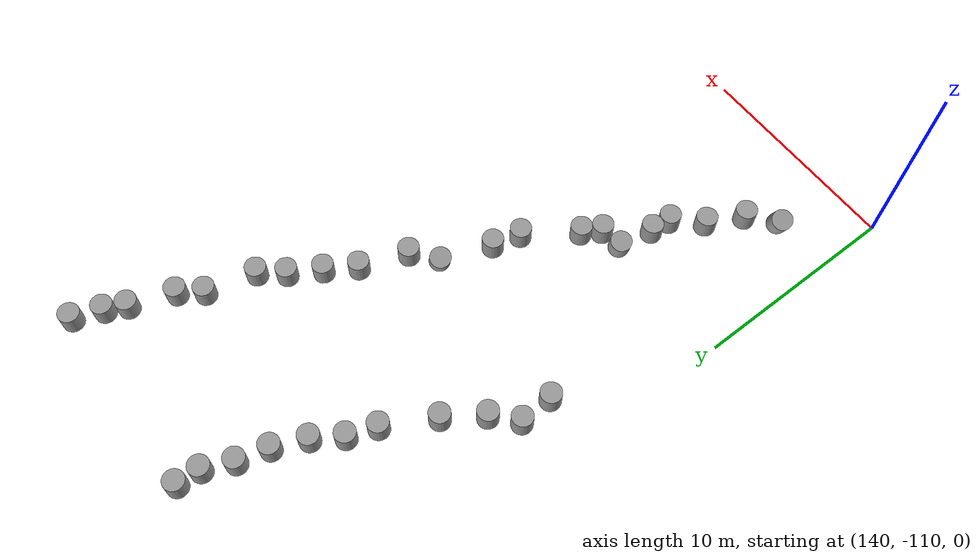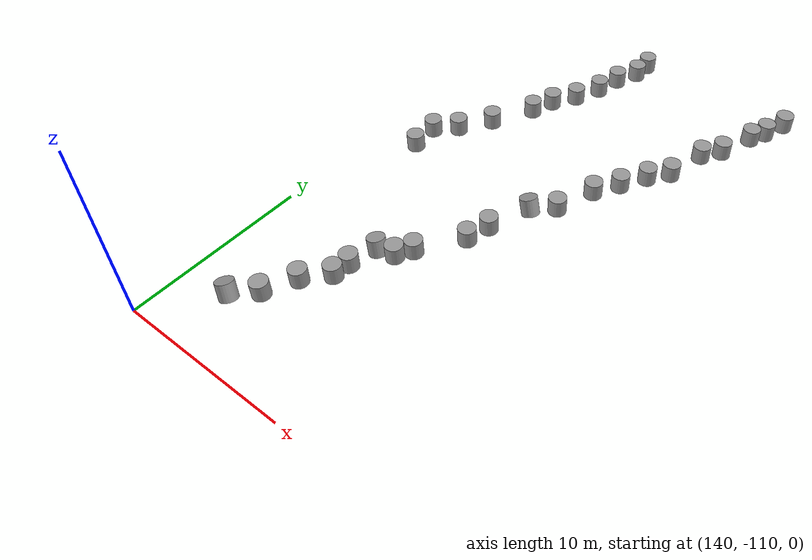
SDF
<sdf version="1.7">
 <world name="default">
  <model name="unit_cylinder_85_clone_244_clone_749">
   <pose>158.512 -78.1438 0.451074 0.000161 0.000404 0.000439</pose>
   <link name="link">
    <inertial>
     <mass>1</mass>
     <inertia><ixx>0.145833</ixx><ixy>0</ixy><ixz>0</ixz><iyy>0.145833</iyy><iyz>0</iyz><izz>0.125</izz></inertia>
    </inertial>
    <collision name="collision">
     <geometry><cylinder><radius>0.5</radius><length>1</length></cylinder></geometry>
    </collision>
    <visual name="visual">
     <geometry><cylinder><radius>0.5</radius><length>1</length></cylinder></geometry>
     <material>
      <script><name>Gazebo/Grey</name><uri>file://media/materials/scripts/gazebo.material</uri></script>
     </material>
    </visual>
   </link>
  </model>
  <model name="unit_cylinder_85_clone_244_clone_750">
   <pose>158 -79.4958 0.451063 0.000162 0.000402 0.000605</pose>
   <link name="link">
    <inertial>
     <mass>1</mass>
     <inertia><ixx>0.145833</ixx><ixy>0</ixy><ixz>0</ixz><iyy>0.145833</iyy><iyz>0</iyz><izz>0.125</izz></inertia>
    </inertial>
    <collision name="collision">
     <geometry><cylinder><radius>0.5</radius><length>1</length></cylinder></geometry>
    </collision>
    <visual name="visual">
     <geometry><cylinder><radius>0.5</radius><length>1</length></cylinder></geometry>
     <material>
      <script><name>Gazebo/Grey</name><uri>file://media/materials/scripts/gazebo.material</uri></script>
     </material>
    </visual>
   </link>
  </model>
  <model name="unit_cylinder_85_clone_244_clone_751">
   <pose>157.526 -80.4483 0.451094 0.000162 0.000404 0.000444</pose>
   <link name="link">
    <inertial>
     <mass>1</mass>
     <inertia><ixx>0.145833</ixx><ixy>0</ixy><ixz>0</ixz><iyy>0.145833</iyy><iyz>0</iyz><izz>0.125</izz></inertia>
    </inertial>
    <collision name="collision">
     <geometry><cylinder><radius>0.5</radius><length>1</length></cylinder></geometry>
    </collision>
    <visual name="visual">
     <geometry><cylinder><radius>0.5</radius><length>1</length></cylinder></geometry>
     <material>
      <script><name>Gazebo/Grey</name><uri>file://media/materials/scripts/gazebo.material</uri></script>
     </material>
    </visual>
   </link>
  </model>
  <model name="unit_cylinder_85_clone_244_clone_755">
   <pose>149.076 -77.8551 0.449993 1e-06 1e-06 0.000507</pose>
   <link name="link">
    <inertial>
     <mass>1</mass>
     <inertia><ixx>0.145833</ixx><ixy>0</ixy><ixz>0</ixz><iyy>0.145833</iyy><iyz>0</iyz><izz>0.125</izz></inertia>
    </inertial>
    <collision name="collision">
     <geometry><cylinder><radius>0.5</radius><length>1</length></cylinder></geometry>
    </collision>
    <visual name="visual">
     <geometry><cylinder><radius>0.5</radius><length>1</length></cylinder></geometry>
     <material>
      <script><name>Gazebo/Grey</name><uri>file://media/materials/scripts/gazebo.material</uri></script>
     </material>
    </visual>
   </link>
  </model>
  <model name="unit_cylinder_85_clone_244_clone_756">
   <pose>149 -79.0002 0.45005 -3e-05 -9.5e-05 0.001161</pose>
   <link name="link">
    <inertial>
     <mass>1</mass>
     <inertia><ixx>0.145833</ixx><ixy>0</ixy><ixz>0</ixz><iyy>0.145833</iyy><iyz>0</iyz><izz>0.125</izz></inertia>
    </inertial>
    <collision name="collision">
     <geometry><cylinder><radius>0.5</radius><length>1</length></cylinder></geometry>
    </collision>
    <visual name="visual">
     <geometry><cylinder><radius>0.5</radius><length>1</length></cylinder></geometry>
     <material>
      <script><name>Gazebo/Grey</name><uri>file://media/materials/scripts/gazebo.material</uri></script>
     </material>
    </visual>
   </link>
  </model>
  <model name="unit_cylinder_85_clone_244_clone_757">
   <pose>148.391 -80.3464 0.45 0 -0 0.000417</pose>
   <link name="link">
    <inertial>
     <mass>1</mass>
     <inertia><ixx>0.145833</ixx><ixy>0</ixy><ixz>0</ixz><iyy>0.145833</iyy><iyz>0</iyz><izz>0.125</izz></inertia>
    </inertial>
    <collision name="collision">
     <geometry><cylinder><radius>0.5</radius><length>1</length></cylinder></geometry>
    </collision>
    <visual name="visual">
     <geometry><cylinder><radius>0.5</radius><length>1</length></cylinder></geometry>
     <material>
      <script><name>Gazebo/Grey</name><uri>file://media/materials/scripts/gazebo.material</uri></script>
     </material>
    </visual>
   </link>
  </model>
  <model name="unit_cylinder_85_clone_244_clone_758">
   <pose>156.767 -82.5105 0.451067 0.000161 0.000403 0.000509</pose>
   <link name="link">
    <inertial>
     <mass>1</mass>
     <inertia><ixx>0.145833</ixx><ixy>0</ixy><ixz>0</ixz><iyy>0.145833</iyy><iyz>0</iyz><izz>0.125</izz></inertia>
    </inertial>
    <collision name="collision">
     <geometry><cylinder><radius>0.5</radius><length>1</length></cylinder></geometry>
    </collision>
    <visual name="visual">
     <geometry><cylinder><radius>0.5</radius><length>1</length></cylinder></geometry>
     <material>
      <script><name>Gazebo/Grey</name><uri>file://media/materials/scripts/gazebo.material</uri></script>
     </material>
    </visual>
   </link>
  </model>
  <model name="unit_cylinder_85_clone_244_clone_759">
   <pose>156 -83.5515 0.451214 0.000168 0.000403 0.000507</pose>
   <link name="link">
    <inertial>
     <mass>1</mass>
     <inertia><ixx>0.145833</ixx><ixy>0</ixy><ixz>0</ixz><iyy>0.145833</iyy><iyz>0</iyz><izz>0.125</izz></inertia>
    </inertial>
    <collision name="collision">
     <geometry><cylinder><radius>0.5</radius><length>1</length></cylinder></geometry>
    </collision>
    <visual name="visual">
     <geometry><cylinder><radius>0.5</radius><length>1</length></cylinder></geometry>
     <material>
      <script><name>Gazebo/Grey</name><uri>file://media/materials/scripts/gazebo.material</uri></script>
     </material>
    </visual>
   </link>
  </model>
  <model name="unit_cylinder_85_clone_244_clone_760">
   <pose>155.407 -85.9225 0.451021 0.000195 0.000382 0.000502</pose>
   <link name="link">
    <inertial>
     <mass>1</mass>
     <inertia><ixx>0.145833</ixx><ixy>0</ixy><ixz>0</ixz><iyy>0.145833</iyy><iyz>0</iyz><izz>0.125</izz></inertia>
    </inertial>
    <collision name="collision">
     <geometry><cylinder><radius>0.5</radius><length>1</length></cylinder></geometry>
    </collision>
    <visual name="visual">
     <geometry><cylinder><radius>0.5</radius><length>1</length></cylinder></geometry>
     <material>
      <script><name>Gazebo/Grey</name><uri>file://media/materials/scripts/gazebo.material</uri></script>
     </material>
    </visual>
   </link>
  </model>
  <model name="unit_cylinder_85_clone_244_clone_761">
   <pose>154.535 -87.0001 0.451145 0.000198 0.000384 0.000486</pose>
   <link name="link">
    <inertial>
     <mass>1</mass>
     <inertia><ixx>0.145833</ixx><ixy>0</ixy><ixz>0</ixz><iyy>0.145833</iyy><iyz>0</iyz><izz>0.125</izz></inertia>
    </inertial>
    <collision name="collision">
     <geometry><cylinder><radius>0.5</radius><length>1</length></cylinder></geometry>
    </collision>
    <visual name="visual">
     <geometry><cylinder><radius>0.5</radius><length>1</length></cylinder></geometry>
     <material>
      <script><name>Gazebo/Grey</name><uri>file://media/materials/scripts/gazebo.material</uri></script>
     </material>
    </visual>
   </link>
  </model>
  <model name="unit_cylinder_85_clone_244_clone_762">
   <pose>153.677 -88.4137 0.451194 0.000202 0.00039 0.000501</pose>
   <link name="link">
    <inertial>
     <mass>1</mass>
     <inertia><ixx>0.145833</ixx><ixy>0</ixy><ixz>0</ixz><iyy>0.145833</iyy><iyz>0</iyz><izz>0.125</izz></inertia>
    </inertial>
    <collision name="collision">
     <geometry><cylinder><radius>0.5</radius><length>1</length></cylinder></geometry>
    </collision>
    <visual name="visual">
     <geometry><cylinder><radius>0.5</radius><length>1</length></cylinder></geometry>
     <material>
      <script><name>Gazebo/Grey</name><uri>file://media/materials/scripts/gazebo.material</uri></script>
     </material>
    </visual>
   </link>
  </model>
  <model name="unit_cylinder_85_clone_244_clone_763">
   <pose>148.012 -81.8271 0.450623 -0.000441 -0.001166 0.000392</pose>
   <link name="link">
    <inertial>
     <mass>1</mass>
     <inertia><ixx>0.145833</ixx><ixy>0</ixy><ixz>0</ixz><iyy>0.145833</iyy><iyz>0</iyz><izz>0.125</izz></inertia>
    </inertial>
    <collision name="collision">
     <geometry><cylinder><radius>0.5</radius><length>1</length></cylinder></geometry>
    </collision>
    <visual name="visual">
     <geometry><cylinder><radius>0.5</radius><length>1</length></cylinder></geometry>
     <material>
      <script><name>Gazebo/Grey</name><uri>file://media/materials/scripts/gazebo.material</uri></script>
     </material>
    </visual>
   </link>
  </model>
  <model name="unit_cylinder_85_clone_244_clone_764">
   <pose>147.345 -83.3594 0.450689 -0.000624 -0.00123 0.000655</pose>
   <link name="link">
    <inertial>
     <mass>1</mass>
     <inertia><ixx>0.145833</ixx><ixy>0</ixy><ixz>0</ixz><iyy>0.145833</iyy><iyz>0</iyz><izz>0.125</izz></inertia>
    </inertial>
    <collision name="collision">
     <geometry><cylinder><radius>0.5</radius><length>1</length></cylinder></geometry>
    </collision>
    <visual name="visual">
     <geometry><cylinder><radius>0.5</radius><length>1</length></cylinder></geometry>
     <material>
      <script><name>Gazebo/Grey</name><uri>file://media/materials/scripts/gazebo.material</uri></script>
     </material>
    </visual>
   </link>
  </model>
  <model name="unit_cylinder_85_clone_244_clone_765">
   <pose>146.482 -84.6404 0.449997 5e-06 -0 0.00049</pose>
   <link name="link">
    <inertial>
     <mass>1</mass>
     <inertia><ixx>0.145833</ixx><ixy>0</ixy><ixz>0</ixz><iyy>0.145833</iyy><iyz>0</iyz><izz>0.125</izz></inertia>
    </inertial>
    <collision name="collision">
     <geometry><cylinder><radius>0.5</radius><length>1</length></cylinder></geometry>
    </collision>
    <visual name="visual">
     <geometry><cylinder><radius>0.5</radius><length>1</length></cylinder></geometry>
     <material>
      <script><name>Gazebo/Grey</name><uri>file://media/materials/scripts/gazebo.material</uri></script>
     </material>
    </visual>
   </link>
  </model>
  <model name="unit_cylinder_85_clone_244_clone_766">
   <pose>145.999 -85.9996 0.45069 -0.000628 -0.001229 0.00066</pose>
   <link name="link">
    <inertial>
     <mass>1</mass>
     <inertia><ixx>0.145833</ixx><ixy>0</ixy><ixz>0</ixz><iyy>0.145833</iyy><iyz>0</iyz><izz>0.125</izz></inertia>
    </inertial>
    <collision name="collision">
     <geometry><cylinder><radius>0.5</radius><length>1</length></cylinder></geometry>
    </collision>
    <visual name="visual">
     <geometry><cylinder><radius>0.5</radius><length>1</length></cylinder></geometry>
     <material>
      <script><name>Gazebo/Grey</name><uri>file://media/materials/scripts/gazebo.material</uri></script>
     </material>
    </visual>
   </link>
  </model>
  <model name="unit_cylinder_85_clone_244_clone_767">
   <pose>152.819 -89.7819 0.451246 0.000179 0.000355 0.0005</pose>
   <link name="link">
    <inertial>
     <mass>1</mass>
     <inertia><ixx>0.145833</ixx><ixy>0</ixy><ixz>0</ixz><iyy>0.145833</iyy><iyz>0</iyz><izz>0.125</izz></inertia>
    </inertial>
    <collision name="collision">
     <geometry><cylinder><radius>0.5</radius><length>1</length></cylinder></geometry>
    </collision>
    <visual name="visual">
     <geometry><cylinder><radius>0.5</radius><length>1</length></cylinder></geometry>
     <material>
      <script><name>Gazebo/Grey</name><uri>file://media/materials/scripts/gazebo.material</uri></script>
     </material>
    </visual>
   </link>
  </model>
  <model name="unit_cylinder_85_clone_244_clone_768">
   <pose>152 -92.0001 0.45113 0.000197 0.00038 0.000423</pose>
   <link name="link">
    <inertial>
     <mass>1</mass>
     <inertia><ixx>0.145833</ixx><ixy>0</ixy><ixz>0</ixz><iyy>0.145833</iyy><iyz>0</iyz><izz>0.125</izz></inertia>
    </inertial>
    <collision name="collision">
     <geometry><cylinder><radius>0.5</radius><length>1</length></cylinder></geometry>
    </collision>
    <visual name="visual">
     <geometry><cylinder><radius>0.5</radius><length>1</length></cylinder></geometry>
     <material>
      <script><name>Gazebo/Grey</name><uri>file://media/materials/scripts/gazebo.material</uri></script>
     </material>
    </visual>
   </link>
  </model>
  <model name="unit_cylinder_85_clone_244_clone_769">
   <pose>150.853 -92.9244 0.386935 -0.157687 -0.298078 0.021598</pose>
   <link name="link">
    <inertial>
     <mass>1</mass>
     <inertia><ixx>0.145833</ixx><ixy>0</ixy><ixz>0</ixz><iyy>0.145833</iyy><iyz>0</iyz><izz>0.125</izz></inertia>
    </inertial>
    <collision name="collision">
     <geometry><cylinder><radius>0.5</radius><length>1</length></cylinder></geometry>
    </collision>
    <visual name="visual">
     <geometry><cylinder><radius>0.5</radius><length>1</length></cylinder></geometry>
     <material>
      <script><name>Gazebo/Grey</name><uri>file://media/materials/scripts/gazebo.material</uri></script>
     </material>
    </visual>
   </link>
  </model>
  <model name="unit_cylinder_85_clone_244_clone_770">
   <pose>149.993 -95.3151 0.451209 0.000226 0.000375 0.000498</pose>
   <link name="link">
    <inertial>
     <mass>1</mass>
     <inertia><ixx>0.145833</ixx><ixy>0</ixy><ixz>0</ixz><iyy>0.145833</iyy><iyz>0</iyz><izz>0.125</izz></inertia>
    </inertial>
    <collision name="collision">
     <geometry><cylinder><radius>0.5</radius><length>1</length></cylinder></geometry>
    </collision>
    <visual name="visual">
     <geometry><cylinder><radius>0.5</radius><length>1</length></cylinder></geometry>
     <material>
      <script><name>Gazebo/Grey</name><uri>file://media/materials/scripts/gazebo.material</uri></script>
     </material>
    </visual>
   </link>
  </model>
  <model name="unit_cylinder_85_clone_244_clone_771">
   <pose>149.643 -96.6688 0.451039 0.00022 0.000375 0.000501</pose>
   <link name="link">
    <inertial>
     <mass>1</mass>
     <inertia><ixx>0.145833</ixx><ixy>0</ixy><ixz>0</ixz><iyy>0.145833</iyy><iyz>0</iyz><izz>0.125</izz></inertia>
    </inertial>
    <collision name="collision">
     <geometry><cylinder><radius>0.5</radius><length>1</length></cylinder></geometry>
    </collision>
    <visual name="visual">
     <geometry><cylinder><radius>0.5</radius><length>1</length></cylinder></geometry>
     <material>
      <script><name>Gazebo/Grey</name><uri>file://media/materials/scripts/gazebo.material</uri></script>
     </material>
    </visual>
   </link>
  </model>
  <model name="unit_cylinder_85_clone_244_clone_772">
   <pose>148.031 -98.955 0.451132 0.000223 0.000367 0.003595</pose>
   <link name="link">
    <inertial>
     <mass>1</mass>
     <inertia><ixx>0.145833</ixx><ixy>0</ixy><ixz>0</ixz><iyy>0.145833</iyy><iyz>0</iyz><izz>0.125</izz></inertia>
    </inertial>
    <collision name="collision">
     <geometry><cylinder><radius>0.5</radius><length>1</length></cylinder></geometry>
    </collision>
    <visual name="visual">
     <geometry><cylinder><radius>0.5</radius><length>1</length></cylinder></geometry>
     <material>
      <script><name>Gazebo/Grey</name><uri>file://media/materials/scripts/gazebo.material</uri></script>
     </material>
    </visual>
   </link>
  </model>
  <model name="unit_cylinder_85_clone_244_clone_773">
   <pose>147.492 -99.7995 0.451137 0.000207 0.000375 -0.027393</pose>
   <link name="link">
    <inertial>
     <mass>1</mass>
     <inertia><ixx>0.145833</ixx><ixy>0</ixy><ixz>0</ixz><iyy>0.145833</iyy><iyz>0</iyz><izz>0.125</izz></inertia>
    </inertial>
    <collision name="collision">
     <geometry><cylinder><radius>0.5</radius><length>1</length></cylinder></geometry>
    </collision>
    <visual name="visual">
     <geometry><cylinder><radius>0.5</radius><length>1</length></cylinder></geometry>
     <material>
      <script><name>Gazebo/Grey</name><uri>file://media/materials/scripts/gazebo.material</uri></script>
     </material>
    </visual>
   </link>
  </model>
  <model name="unit_cylinder_85_clone_244_clone_774">
   <pose>144.731 -88.3083 0.450601 -0.000631 -0.00103 0.000929</pose>
   <link name="link">
    <inertial>
     <mass>1</mass>
     <inertia><ixx>0.145833</ixx><ixy>0</ixy><ixz>0</ixz><iyy>0.145833</iyy><iyz>0</iyz><izz>0.125</izz></inertia>
    </inertial>
    <collision name="collision">
     <geometry><cylinder><radius>0.5</radius><length>1</length></cylinder></geometry>
    </collision>
    <visual name="visual">
     <geometry><cylinder><radius>0.5</radius><length>1</length></cylinder></geometry>
     <material>
      <script><name>Gazebo/Grey</name><uri>file://media/materials/scripts/gazebo.material</uri></script>
     </material>
    </visual>
   </link>
  </model>
  <model name="unit_cylinder_85_clone_244_clone_775">
   <pose>143.555 -90 0.44999 0 -0 0.000523</pose>
   <link name="link">
    <inertial>
     <mass>1</mass>
     <inertia><ixx>0.145833</ixx><ixy>0</ixy><ixz>0</ixz><iyy>0.145833</iyy><iyz>0</iyz><izz>0.125</izz></inertia>
    </inertial>
    <collision name="collision">
     <geometry><cylinder><radius>0.5</radius><length>1</length></cylinder></geometry>
    </collision>
    <visual name="visual">
     <geometry><cylinder><radius>0.5</radius><length>1</length></cylinder></geometry>
     <material>
      <script><name>Gazebo/Grey</name><uri>file://media/materials/scripts/gazebo.material</uri></script>
     </material>
    </visual>
   </link>
  </model>
  <model name="unit_cylinder_85_clone_244_clone_776">
   <pose>142.457 -91 0.450001 2e-06 -2e-06 0.000496</pose>
   <link name="link">
    <inertial>
     <mass>1</mass>
     <inertia><ixx>0.145833</ixx><ixy>0</ixy><ixz>0</ixz><iyy>0.145833</iyy><iyz>0</iyz><izz>0.125</izz></inertia>
    </inertial>
    <collision name="collision">
     <geometry><cylinder><radius>0.5</radius><length>1</length></cylinder></geometry>
    </collision>
    <visual name="visual">
     <geometry><cylinder><radius>0.5</radius><length>1</length></cylinder></geometry>
     <material>
      <script><name>Gazebo/Grey</name><uri>file://media/materials/scripts/gazebo.material</uri></script>
     </material>
    </visual>
   </link>
  </model>
  <model name="unit_cylinder_85_clone_244_clone_777">
   <pose>142.54 -92.6333 0.45082 -0.000892 -0.001379 0.000597</pose>
   <link name="link">
    <inertial>
     <mass>1</mass>
     <inertia><ixx>0.145833</ixx><ixy>0</ixy><ixz>0</ixz><iyy>0.145833</iyy><iyz>0</iyz><izz>0.125</izz></inertia>
    </inertial>
    <collision name="collision">
     <geometry><cylinder><radius>0.5</radius><length>1</length></cylinder></geometry>
    </collision>
    <visual name="visual">
     <geometry><cylinder><radius>0.5</radius><length>1</length></cylinder></geometry>
     <material>
      <script><name>Gazebo/Grey</name><uri>file://media/materials/scripts/gazebo.material</uri></script>
     </material>
    </visual>
   </link>
  </model>
  <model name="unit_cylinder_85_clone_244_clone_785">
   <pose>146.429 -99.9643 0.346572 -0.122701 -0.181497 0.059296</pose>
   <link name="link">
    <inertial>
     <mass>1</mass>
     <inertia><ixx>0.145833</ixx><ixy>0</ixy><ixz>0</ixz><iyy>0.145833</iyy><iyz>0</iyz><izz>0.125</izz></inertia>
    </inertial>
    <collision name="collision">
     <geometry><cylinder><radius>0.5</radius><length>1</length></cylinder></geometry>
    </collision>
    <visual name="visual">
     <geometry><cylinder><radius>0.5</radius><length>1</length></cylinder></geometry>
     <material>
      <script><name>Gazebo/Grey</name><uri>file://media/materials/scripts/gazebo.material</uri></script>
     </material>
    </visual>
   </link>
  </model>
  <model name="unit_cylinder_85_clone_244_clone_786">
   <pose>146.104 -101.614 0.451251 0.000219 0.000362 0.013743</pose>
   <link name="link">
    <inertial>
     <mass>1</mass>
     <inertia><ixx>0.145833</ixx><ixy>0</ixy><ixz>0</ixz><iyy>0.145833</iyy><iyz>0</iyz><izz>0.125</izz></inertia>
    </inertial>
    <collision name="collision">
     <geometry><cylinder><radius>0.5</radius><length>1</length></cylinder></geometry>
    </collision>
    <visual name="visual">
     <geometry><cylinder><radius>0.5</radius><length>1</length></cylinder></geometry>
     <material>
      <script><name>Gazebo/Grey</name><uri>file://media/materials/scripts/gazebo.material</uri></script>
     </material>
    </visual>
   </link>
  </model>
  <model name="unit_cylinder_85_clone_244_clone_787">
   <pose>145.995 -102.609 0.451068 0.000219 0.000366 0.002835</pose>
   <link name="link">
    <inertial>
     <mass>1</mass>
     <inertia><ixx>0.145833</ixx><ixy>0</ixy><ixz>0</ixz><iyy>0.145833</iyy><iyz>0</iyz><izz>0.125</izz></inertia>
    </inertial>
    <collision name="collision">
     <geometry><cylinder><radius>0.5</radius><length>1</length></cylinder></geometry>
    </collision>
    <visual name="visual">
     <geometry><cylinder><radius>0.5</radius><length>1</length></cylinder></geometry>
     <material>
      <script><name>Gazebo/Grey</name><uri>file://media/materials/scripts/gazebo.material</uri></script>
     </material>
    </visual>
   </link>
  </model>
  <model name="unit_cylinder_85_clone_244_clone_788">
   <pose>144.864 -103.846 0.451214 0.00022 0.000371 0.000501</pose>
   <link name="link">
    <inertial>
     <mass>1</mass>
     <inertia><ixx>0.145833</ixx><ixy>0</ixy><ixz>0</ixz><iyy>0.145833</iyy><iyz>0</iyz><izz>0.125</izz></inertia>
    </inertial>
    <collision name="collision">
     <geometry><cylinder><radius>0.5</radius><length>1</length></cylinder></geometry>
    </collision>
    <visual name="visual">
     <geometry><cylinder><radius>0.5</radius><length>1</length></cylinder></geometry>
     <material>
      <script><name>Gazebo/Grey</name><uri>file://media/materials/scripts/gazebo.material</uri></script>
     </material>
    </visual>
   </link>
  </model>
  <model name="unit_cylinder_85_clone_244_clone_789">
   <pose>144.017 -105.55 0.451151 0.000221 0.000365 0.000501</pose>
   <link name="link">
    <inertial>
     <mass>1</mass>
     <inertia><ixx>0.145833</ixx><ixy>0</ixy><ixz>0</ixz><iyy>0.145833</iyy><iyz>0</iyz><izz>0.125</izz></inertia>
    </inertial>
    <collision name="collision">
     <geometry><cylinder><radius>0.5</radius><length>1</length></cylinder></geometry>
    </collision>
    <visual name="visual">
     <geometry><cylinder><radius>0.5</radius><length>1</length></cylinder></geometry>
     <material>
      <script><name>Gazebo/Grey</name><uri>file://media/materials/scripts/gazebo.material</uri></script>
     </material>
    </visual>
   </link>
  </model>
  <model name="unit_cylinder_85_clone_244_clone_790">
   <pose>142.781 -106.594 0.393123 -0.188414 -0.304714 0.026077</pose>
   <link name="link">
    <inertial>
     <mass>1</mass>
     <inertia><ixx>0.145833</ixx><ixy>0</ixy><ixz>0</ixz><iyy>0.145833</iyy><iyz>0</iyz><izz>0.125</izz></inertia>
    </inertial>
    <collision name="collision">
     <geometry><cylinder><radius>0.5</radius><length>1</length></cylinder></geometry>
    </collision>
    <visual name="visual">
     <geometry><cylinder><radius>0.5</radius><length>1</length></cylinder></geometry>
     <material>
      <script><name>Gazebo/Grey</name><uri>file://media/materials/scripts/gazebo.material</uri></script>
     </material>
    </visual>
   </link>
  </model>
 </world>
</sdf>
